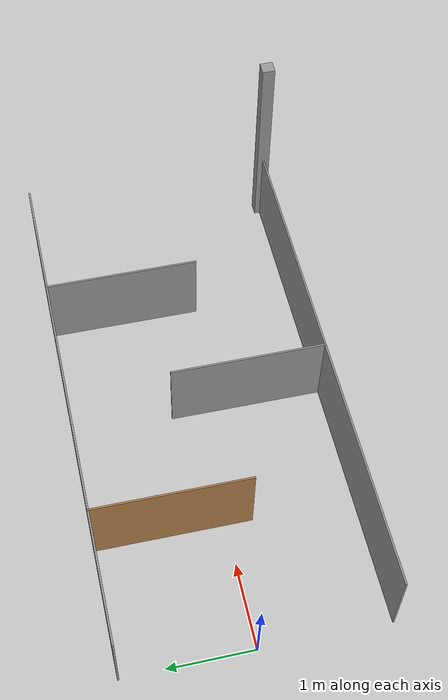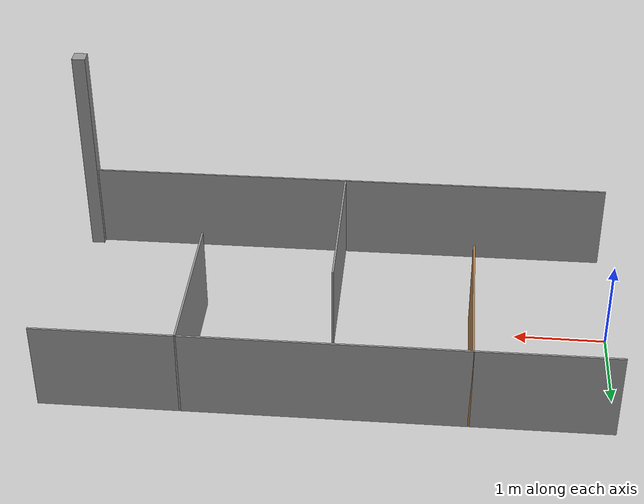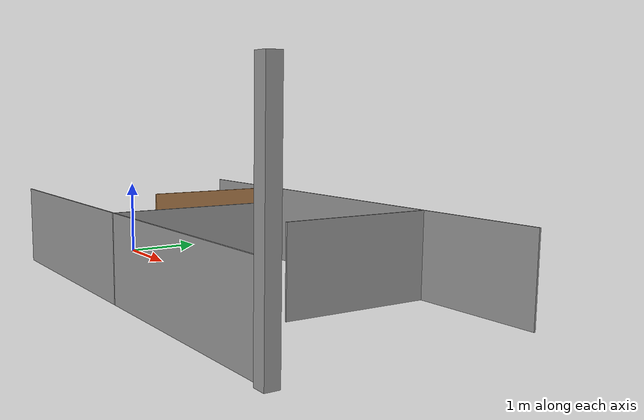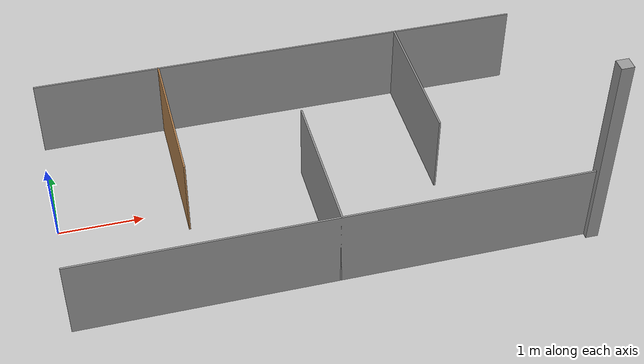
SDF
<?xml version='1.0'?>
<sdf version='1.7'>
  <model name='competition'>
    <pose>3.0325 -0.0325 0 0 -0 0</pose>
    <link name='Wall_13'>
      <collision name='Wall_13_Collision'>
        <geometry>
          <box>
            <size>1.82 0.02 1</size>
          </box>
        </geometry>
        <pose>0 0 0.5 0 -0 0</pose>
      </collision>
      <visual name='Wall_13_Visual'>
        <pose>0 0 0.5 0 -0 0</pose>
        <geometry>
          <box>
            <size>1.82 0.02 1</size>
          </box>
        </geometry>
        <material>
          <script>
            <uri>file://media/materials/scripts/gazebo.material</uri>
            <name>Gazebo/Wood</name>
          </script>
          <ambient>1 1 1 1</ambient>
        </material>
        <meta>
          <layer>0</layer>
        </meta>
      </visual>
      <pose>-1.5325 0.6325 0 0 -0 -1.5708</pose>
    </link>
    <link name='Wall_17'>
      <collision name='Wall_17_Collision'>
        <geometry>
          <box>
            <size>1.82 0.02 1</size>
          </box>
        </geometry>
        <pose>0 0 0.5 0 -0 0</pose>
      </collision>
      <visual name='Wall_17_Visual'>
        <pose>0 0 0.5 0 -0 0</pose>
        <geometry>
          <box>
            <size>1.82 0.02 1</size>
          </box>
        </geometry>
        <material>
          <script>
            <uri>file://media/materials/scripts/gazebo.material</uri>
            <name>Gazebo/Grey</name>
          </script>
          <ambient>1 1 1 1</ambient>
        </material>
        <meta>
          <layer>0</layer>
        </meta>
      </visual>
      <pose>-0.0325 -0.5675 0 0 -0 1.5708</pose>
    </link>
    <link name='Wall_19'>
      <collision name='Wall_19_Collision'>
        <geometry>
          <box>
            <size>1.82 0.02 1</size>
          </box>
        </geometry>
        <pose>0 0 0.5 0 -0 0</pose>
      </collision>
      <visual name='Wall_19_Visual'>
        <pose>0 0 0.5 0 -0 0</pose>
        <geometry>
          <box>
            <size>1.82 0.02 1</size>
          </box>
        </geometry>
        <material>
          <script>
            <uri>file://media/materials/scripts/gazebo.material</uri>
            <name>Gazebo/Grey</name>
          </script>
          <ambient>1 1 1 1</ambient>
        </material>
        <meta>
          <layer>0</layer>
        </meta>
      </visual>
      <pose>1.4675 0.6325 0 0 -0 -1.5708</pose>
    </link>
    <link name='Wall_5'>
      <collision name='Wall_5_Collision'>
        <geometry>
          <box>
            <size>6.02 0.02 1</size>
          </box>
        </geometry>
        <pose>0 0 0.5 0 -0 0</pose>
      </collision>
      <visual name='Wall_5_Visual'>
        <pose>0 0 0.5 0 -0 0</pose>
        <geometry>
          <box>
            <size>6.02 0.02 1</size>
          </box>
        </geometry>
        <material>
          <script>
            <uri>file://media/materials/scripts/gazebo.material</uri>
            <name>Gazebo/Grey</name>
          </script>
          <ambient>1 1 1 1</ambient>
        </material>
        <meta>
          <layer>0</layer>
        </meta>
      </visual>
      <pose>-0.0325 -1.4675 0 0 -0 0</pose>
    </link>
    <link name='Wall_6'>
      <collision name='Wall_6_Collision'>
        <geometry>
          <box>
            <size>0.15 0.15 2.5</size>
          </box>
        </geometry>
        <pose>0 0 1.25 0 -0 0</pose>
      </collision>
      <visual name='Wall_6_Visual'>
        <pose>0 0 1.25 0 -0 0</pose>
        <geometry>
          <box>
            <size>0.15 0.15 2.5</size>
          </box>
        </geometry>
        <material>
          <script>
            <uri>file://media/materials/scripts/gazebo.material</uri>
            <name>Gazebo/Grey</name>
          </script>
          <ambient>1 1 1 1</ambient>
        </material>
        <meta>
          <layer>0</layer>
        </meta>
      </visual>
      <pose>2.9675 -1.4675 0 0 -0 0</pose>
    </link>
    <link name='Wall_8'>
      <collision name='Wall_8_Collision'>
        <geometry>
          <box>
            <size>6.02 0.02 1</size>
          </box>
        </geometry>
        <pose>0 0 0.5 0 -0 0</pose>
      </collision>
      <visual name='Wall_8_Visual'>
        <pose>0 0 0.5 0 -0 0</pose>
        <geometry>
          <box>
            <size>6.02 0.02 1</size>
          </box>
        </geometry>
        <material>
          <script>
            <uri>file://media/materials/scripts/gazebo.material</uri>
            <name>Gazebo/Grey</name>
          </script>
          <ambient>1 1 1 1</ambient>
        </material>
        <meta>
          <layer>0</layer>
        </meta>
      </visual>
      <pose>-0.0325 1.5325 0 0 -0 0</pose>
    </link>
    <static>1</static>
  </model>
</sdf>
